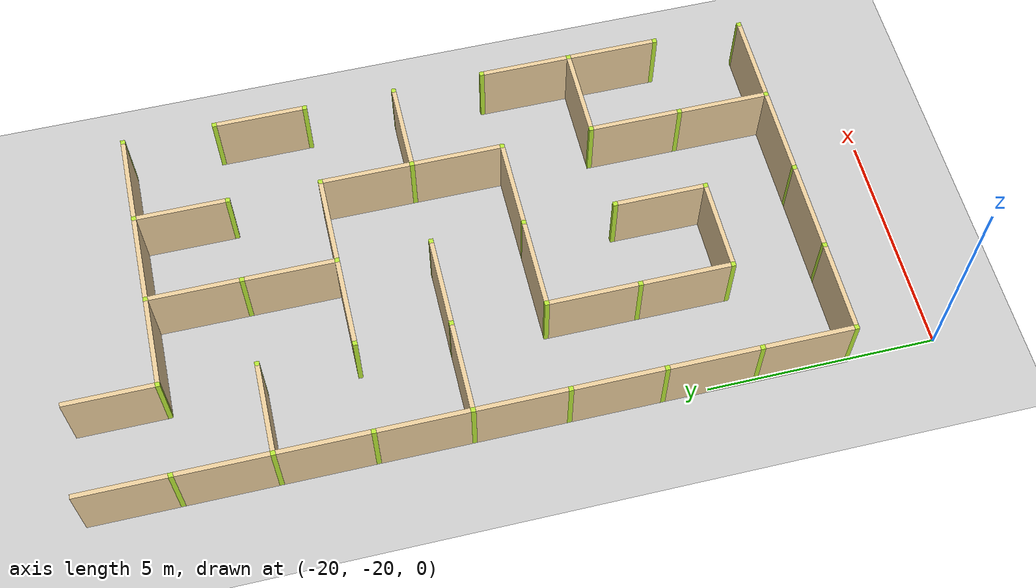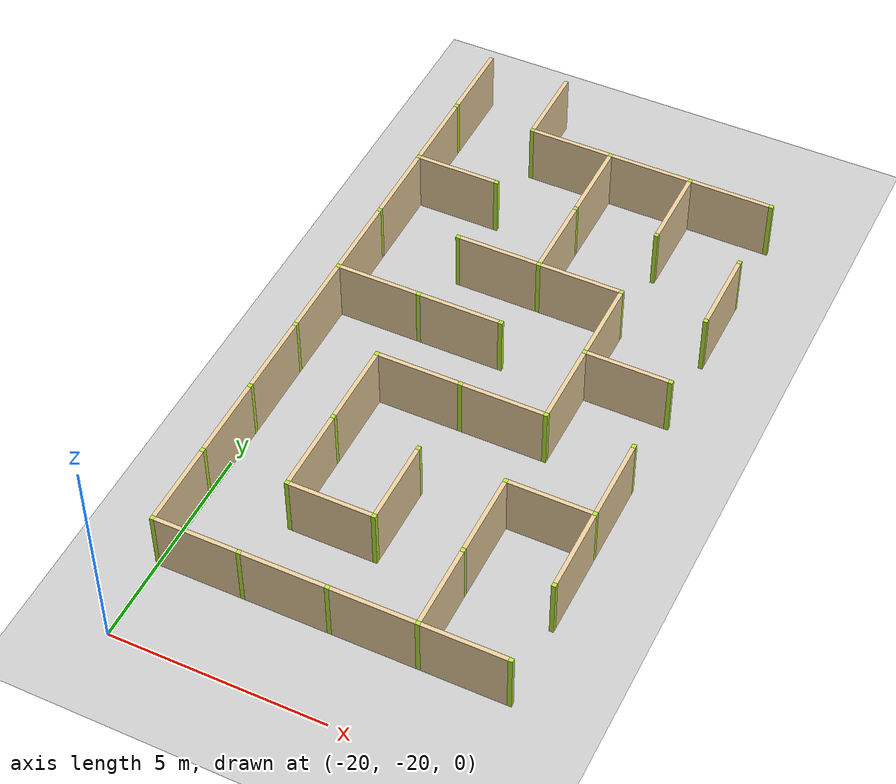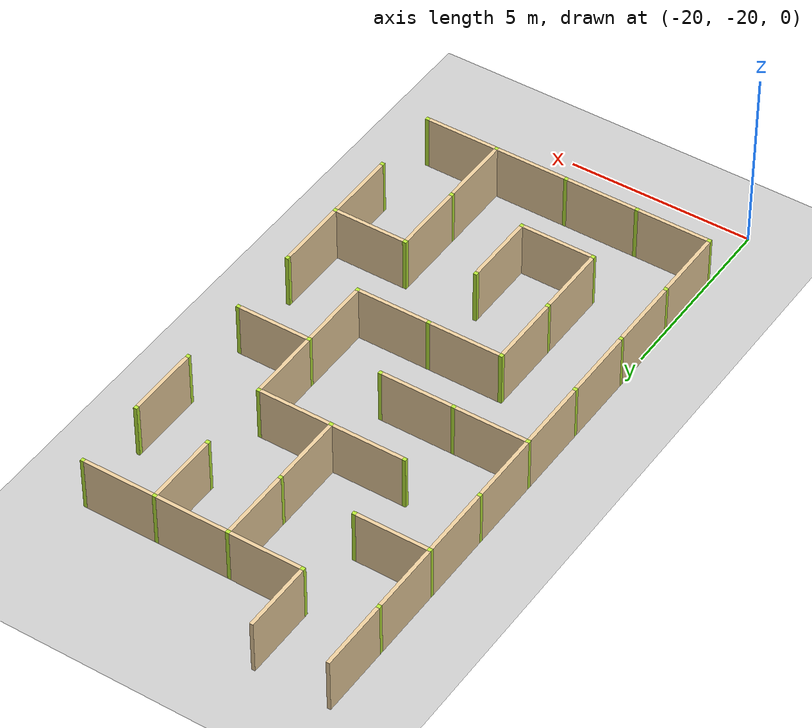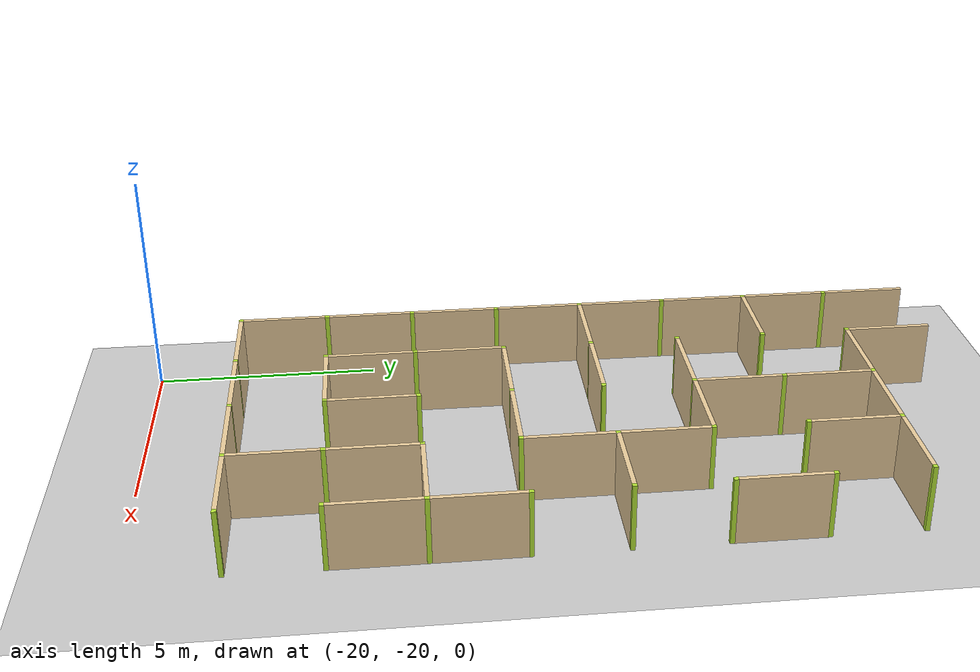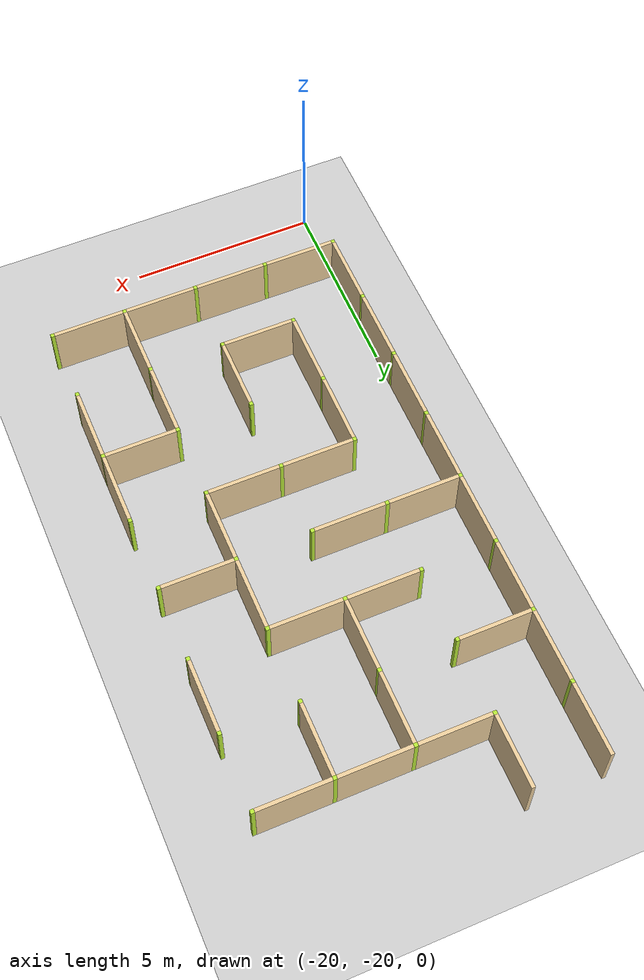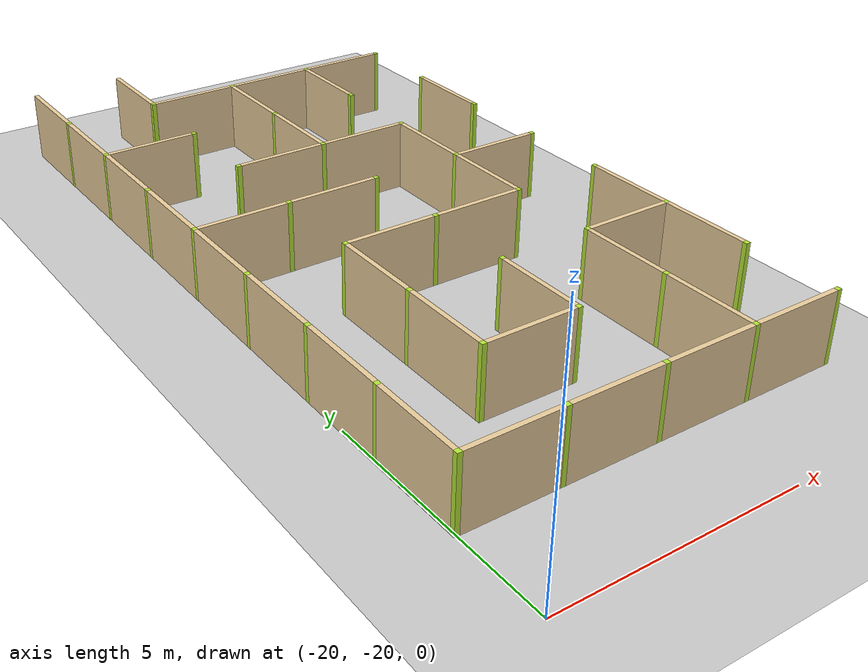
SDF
<sdf version="1.4">
 <world name="maze_world">
  <model name="ground">
   <static>true</static>
   <link name="ground_link">
    <collision name="collision1"><geometry><plane><normal>0 0 1</normal></plane></geometry></collision>
    <visual name="visual1"><geometry><plane><normal>0 0 1</normal><size>100 100</size></plane></geometry></visual>
   </link>
  </model>
  <model name="Untitled">
   <link name="Wall_0_11_v">
    <collision name="Wall_0_Collision">
     <geometry><box><size>1.9 0.1 1.5</size></box></geometry>
     <pose>0 0 0.75 0 -0 0</pose>
    </collision>
    <visual name="Wall_0_Visual">
     <pose>0 0 0.75 0 -0 0</pose>
     <geometry><box><size>1.9 0.1 1.5</size></box></geometry>
     <material>
      <script><uri>file://media/materials/scripts/gazebo.material</uri><name>Gazebo/Grey</name></script>
      <ambient>0.921569 0.807843 0.615686 1</ambient>
     </material>
     <meta><layer>0</layer></meta>
    </visual>
    <pose>-20 -3.0 0 0 -0 1.5708</pose>
   </link>
   <link name="Wall_1_11_v">
    <collision name="Wall_0_Collision">
     <geometry><box><size>1.9 0.1 1.5</size></box></geometry>
     <pose>0 0 0.75 0 -0 0</pose>
    </collision>
    <visual name="Wall_0_Visual">
     <pose>0 0 0.75 0 -0 0</pose>
     <geometry><box><size>1.9 0.1 1.5</size></box></geometry>
     <material>
      <script><uri>file://media/materials/scripts/gazebo.material</uri><name>Gazebo/Grey</name></script>
      <ambient>0.921569 0.807843 0.615686 1</ambient>
     </material>
     <meta><layer>0</layer></meta>
    </visual>
    <pose>-18 -3.0 0 0 -0 1.5708</pose>
   </link>
   <link name="Wall_0_12_v">
    <collision name="Wall_0_Collision">
     <geometry><box><size>1.9 0.1 1.5</size></box></geometry>
     <pose>0 0 0.75 0 -0 0</pose>
    </collision>
    <visual name="Wall_0_Visual">
     <pose>0 0 0.75 0 -0 0</pose>
     <geometry><box><size>1.9 0.1 1.5</size></box></geometry>
     <material>
      <script><uri>file://media/materials/scripts/gazebo.material</uri><name>Gazebo/Grey</name></script>
      <ambient>0.921569 0.807843 0.615686 1</ambient>
     </material>
     <meta><layer>0</layer></meta>
    </visual>
    <pose>-20 -5.0 0 0 -0 1.5708</pose>
   </link>
   <link name="Joint_-20_-4">
    <collision name="Wall_2_Collision">
     <geometry><box><size>0.1 0.1 1.5</size></box></geometry>
     <pose>0 0 0.75 0 -0 0</pose>
    </collision>
    <visual name="Wall_2_Visual">
     <pose>0 0 0.75 0 -0 0</pose>
     <geometry><box><size>0.1 0.1 1.5</size></box></geometry>
     <material>
      <script><uri>file://media/materials/scripts/gazebo.material</uri><name>Gazebo/Grey</name></script>
      <ambient>0.721569 0.907843 0.215686 1</ambient>
     </material>
     <meta><layer>0</layer></meta>
    </visual>
    <pose>-20 -4 0 0 -0 0</pose>
   </link>
   <link name="Wall_1_12_h">
    <collision name="Wall_0_Collision">
     <geometry><box><size>1.9 0.1 1.5</size></box></geometry>
     <pose>0 0 0.75 0 -0 0</pose>
    </collision>
    <visual name="Wall_0_Visual">
     <pose>0 0 0.75 0 -0 0</pose>
     <geometry><box><size>1.9 0.1 1.5</size></box></geometry>
     <material>
      <script><uri>file://media/materials/scripts/gazebo.material</uri><name>Gazebo/Grey</name></script>
      <ambient>0.921569 0.807843 0.615686 1</ambient>
     </material>
     <meta><layer>0</layer></meta>
    </visual>
    <pose>-17.0 -4 0 0 -0 0</pose>
   </link>
   <link name="Joint_-18_-4">
    <collision name="Wall_2_Collision">
     <geometry><box><size>0.1 0.1 1.5</size></box></geometry>
     <pose>0 0 0.75 0 -0 0</pose>
    </collision>
    <visual name="Wall_2_Visual">
     <pose>0 0 0.75 0 -0 0</pose>
     <geometry><box><size>0.1 0.1 1.5</size></box></geometry>
     <material>
      <script><uri>file://media/materials/scripts/gazebo.material</uri><name>Gazebo/Grey</name></script>
      <ambient>0.721569 0.907843 0.215686 1</ambient>
     </material>
     <meta><layer>0</layer></meta>
    </visual>
    <pose>-18 -4 0 0 -0 0</pose>
   </link>
   <link name="Wall_2_12_h">
    <collision name="Wall_0_Collision">
     <geometry><box><size>1.9 0.1 1.5</size></box></geometry>
     <pose>0 0 0.75 0 -0 0</pose>
    </collision>
    <visual name="Wall_0_Visual">
     <pose>0 0 0.75 0 -0 0</pose>
     <geometry><box><size>1.9 0.1 1.5</size></box></geometry>
     <material>
      <script><uri>file://media/materials/scripts/gazebo.material</uri><name>Gazebo/Grey</name></script>
      <ambient>0.921569 0.807843 0.615686 1</ambient>
     </material>
     <meta><layer>0</layer></meta>
    </visual>
    <pose>-15.0 -4 0 0 -0 0</pose>
   </link>
   <link name="Wall_2_12_v">
    <collision name="Wall_0_Collision">
     <geometry><box><size>1.9 0.1 1.5</size></box></geometry>
     <pose>0 0 0.75 0 -0 0</pose>
    </collision>
    <visual name="Wall_0_Visual">
     <pose>0 0 0.75 0 -0 0</pose>
     <geometry><box><size>1.9 0.1 1.5</size></box></geometry>
     <material>
      <script><uri>file://media/materials/scripts/gazebo.material</uri><name>Gazebo/Grey</name></script>
      <ambient>0.921569 0.807843 0.615686 1</ambient>
     </material>
     <meta><layer>0</layer></meta>
    </visual>
    <pose>-16 -5.0 0 0 -0 1.5708</pose>
   </link>
   <link name="Joint_-16_-4">
    <collision name="Wall_2_Collision">
     <geometry><box><size>0.1 0.1 1.5</size></box></geometry>
     <pose>0 0 0.75 0 -0 0</pose>
    </collision>
    <visual name="Wall_2_Visual">
     <pose>0 0 0.75 0 -0 0</pose>
     <geometry><box><size>0.1 0.1 1.5</size></box></geometry>
     <material>
      <script><uri>file://media/materials/scripts/gazebo.material</uri><name>Gazebo/Grey</name></script>
      <ambient>0.721569 0.907843 0.215686 1</ambient>
     </material>
     <meta><layer>0</layer></meta>
    </visual>
    <pose>-16 -4 0 0 -0 0</pose>
   </link>
   <link name="Wall_3_12_h">
    <collision name="Wall_0_Collision">
     <geometry><box><size>1.9 0.1 1.5</size></box></geometry>
     <pose>0 0 0.75 0 -0 0</pose>
    </collision>
    <visual name="Wall_0_Visual">
     <pose>0 0 0.75 0 -0 0</pose>
     <geometry><box><size>1.9 0.1 1.5</size></box></geometry>
     <material>
      <script><uri>file://media/materials/scripts/gazebo.material</uri><name>Gazebo/Grey</name></script>
      <ambient>0.921569 0.807843 0.615686 1</ambient>
     </material>
     <meta><layer>0</layer></meta>
    </visual>
    <pose>-13.0 -4 0 0 -0 0</pose>
   </link>
   <link name="Wall_3_12_v">
    <collision name="Wall_0_Collision">
     <geometry><box><size>1.9 0.1 1.5</size></box></geometry>
     <pose>0 0 0.75 0 -0 0</pose>
    </collision>
    <visual name="Wall_0_Visual">
     <pose>0 0 0.75 0 -0 0</pose>
     <geometry><box><size>1.9 0.1 1.5</size></box></geometry>
     <material>
      <script><uri>file://media/materials/scripts/gazebo.material</uri><name>Gazebo/Grey</name></script>
      <ambient>0.921569 0.807843 0.615686 1</ambient>
     </material>
     <meta><layer>0</layer></meta>
    </visual>
    <pose>-14 -5.0 0 0 -0 1.5708</pose>
   </link>
   <link name="Joint_-14_-4">
    <collision name="Wall_2_Collision">
     <geometry><box><size>0.1 0.1 1.5</size></box></geometry>
     <pose>0 0 0.75 0 -0 0</pose>
    </collision>
    <visual name="Wall_2_Visual">
     <pose>0 0 0.75 0 -0 0</pose>
     <geometry><box><size>0.1 0.1 1.5</size></box></geometry>
     <material>
      <script><uri>file://media/materials/scripts/gazebo.material</uri><name>Gazebo/Grey</name></script>
      <ambient>0.721569 0.907843 0.215686 1</ambient>
     </material>
     <meta><layer>0</layer></meta>
    </visual>
    <pose>-14 -4 0 0 -0 0</pose>
   </link>
   <link name="Joint_-12_-4">
    <collision name="Wall_2_Collision">
     <geometry><box><size>0.1 0.1 1.5</size></box></geometry>
     <pose>0 0 0.75 0 -0 0</pose>
    </collision>
    <visual name="Wall_2_Visual">
     <pose>0 0 0.75 0 -0 0</pose>
     <geometry><box><size>0.1 0.1 1.5</size></box></geometry>
     <material>
      <script><uri>file://media/materials/scripts/gazebo.material</uri><name>Gazebo/Grey</name></script>
      <ambient>0.721569 0.907843 0.215686 1</ambient>
     </material>
     <meta><layer>0</layer></meta>
    </visual>
    <pose>-12 -4 0 0 -0 0</pose>
   </link>
   <link name="Wall_0_13_h">
    <collision name="Wall_0_Collision">
     <geometry><box><size>1.9 0.1 1.5</size></box></geometry>
     <pose>0 0 0.75 0 -0 0</pose>
    </collision>
    <visual name="Wall_0_Visual">
     <pose>0 0 0.75 0 -0 0</pose>
     <geometry><box><size>1.9 0.1 1.5</size></box></geometry>
     <material>
      <script><uri>file://media/materials/scripts/gazebo.material</uri><name>Gazebo/Grey</name></script>
      <ambient>0.921569 0.807843 0.615686 1</ambient>
     </material>
     <meta><layer>0</layer></meta>
    </visual>
    <pose>-19.0 -6 0 0 -0 0</pose>
   </link>
   <link name="Wall_0_13_v">
    <collision name="Wall_0_Collision">
     <geometry><box><size>1.9 0.1 1.5</size></box></geometry>
     <pose>0 0 0.75 0 -0 0</pose>
    </collision>
    <visual name="Wall_0_Visual">
     <pose>0 0 0.75 0 -0 0</pose>
     <geometry><box><size>1.9 0.1 1.5</size></box></geometry>
     <material>
      <script><uri>file://media/materials/scripts/gazebo.material</uri><name>Gazebo/Grey</name></script>
      <ambient>0.921569 0.807843 0.615686 1</ambient>
     </material>
     <meta><layer>0</layer></meta>
    </visual>
    <pose>-20 -7.0 0 0 -0 1.5708</pose>
   </link>
   <link name="Joint_-20_-6">
    <collision name="Wall_2_Collision">
     <geometry><box><size>0.1 0.1 1.5</size></box></geometry>
     <pose>0 0 0.75 0 -0 0</pose>
    </collision>
    <visual name="Wall_2_Visual">
     <pose>0 0 0.75 0 -0 0</pose>
     <geometry><box><size>0.1 0.1 1.5</size></box></geometry>
     <material>
      <script><uri>file://media/materials/scripts/gazebo.material</uri><name>Gazebo/Grey</name></script>
      <ambient>0.721569 0.907843 0.215686 1</ambient>
     </material>
     <meta><layer>0</layer></meta>
    </visual>
    <pose>-20 -6 0 0 -0 0</pose>
   </link>
   <link name="Joint_-18_-6">
    <collision name="Wall_2_Collision">
     <geometry><box><size>0.1 0.1 1.5</size></box></geometry>
     <pose>0 0 0.75 0 -0 0</pose>
    </collision>
    <visual name="Wall_2_Visual">
     <pose>0 0 0.75 0 -0 0</pose>
     <geometry><box><size>0.1 0.1 1.5</size></box></geometry>
     <material>
      <script><uri>file://media/materials/scripts/gazebo.material</uri><name>Gazebo/Grey</name></script>
      <ambient>0.721569 0.907843 0.215686 1</ambient>
     </material>
     <meta><layer>0</layer></meta>
    </visual>
    <pose>-18 -6 0 0 -0 0</pose>
   </link>
   <link name="Wall_2_13_v">
    <collision name="Wall_0_Collision">
     <geometry><box><size>1.9 0.1 1.5</size></box></geometry>
     <pose>0 0 0.75 0 -0 0</pose>
    </collision>
    <visual name="Wall_0_Visual">
     <pose>0 0 0.75 0 -0 0</pose>
     <geometry><box><size>1.9 0.1 1.5</size></box></geometry>
     <material>
      <script><uri>file://media/materials/scripts/gazebo.material</uri><name>Gazebo/Grey</name></script>
      <ambient>0.921569 0.807843 0.615686 1</ambient>
     </material>
     <meta><layer>0</layer></meta>
    </visual>
    <pose>-16 -7.0 0 0 -0 1.5708</pose>
   </link>
   <link name="Joint_-16_-6">
    <collision name="Wall_2_Collision">
     <geometry><box><size>0.1 0.1 1.5</size></box></geometry>
     <pose>0 0 0.75 0 -0 0</pose>
    </collision>
    <visual name="Wall_2_Visual">
     <pose>0 0 0.75 0 -0 0</pose>
     <geometry><box><size>0.1 0.1 1.5</size></box></geometry>
     <material>
      <script><uri>file://media/materials/scripts/gazebo.material</uri><name>Gazebo/Grey</name></script>
      <ambient>0.721569 0.907843 0.215686 1</ambient>
     </material>
     <meta><layer>0</layer></meta>
    </visual>
    <pose>-16 -6 0 0 -0 0</pose>
   </link>
   <link name="Joint_-14_-6">
    <collision name="Wall_2_Collision">
     <geometry><box><size>0.1 0.1 1.5</size></box></geometry>
     <pose>0 0 0.75 0 -0 0</pose>
    </collision>
    <visual name="Wall_2_Visual">
     <pose>0 0 0.75 0 -0 0</pose>
     <geometry><box><size>0.1 0.1 1.5</size></box></geometry>
     <material>
      <script><uri>file://media/materials/scripts/gazebo.material</uri><name>Gazebo/Grey</name></script>
      <ambient>0.721569 0.907843 0.215686 1</ambient>
     </material>
     <meta><layer>0</layer></meta>
    </visual>
    <pose>-14 -6 0 0 -0 0</pose>
   </link>
   <link name="Wall_4_13_v">
    <collision name="Wall_0_Collision">
     <geometry><box><size>1.9 0.1 1.5</size></box></geometry>
     <pose>0 0 0.75 0 -0 0</pose>
    </collision>
    <visual name="Wall_0_Visual">
     <pose>0 0 0.75 0 -0 0</pose>
     <geometry><box><size>1.9 0.1 1.5</size></box></geometry>
     <material>
      <script><uri>file://media/materials/scripts/gazebo.material</uri><name>Gazebo/Grey</name></script>
      <ambient>0.921569 0.807843 0.615686 1</ambient>
     </material>
     <meta><layer>0</layer></meta>
    </visual>
    <pose>-12 -7.0 0 0 -0 1.5708</pose>
   </link>
   <link name="Joint_-12_-6">
    <collision name="Wall_2_Collision">
     <geometry><box><size>0.1 0.1 1.5</size></box></geometry>
     <pose>0 0 0.75 0 -0 0</pose>
    </collision>
    <visual name="Wall_2_Visual">
     <pose>0 0 0.75 0 -0 0</pose>
     <geometry><box><size>0.1 0.1 1.5</size></box></geometry>
     <material>
      <script><uri>file://media/materials/scripts/gazebo.material</uri><name>Gazebo/Grey</name></script>
      <ambient>0.721569 0.907843 0.215686 1</ambient>
     </material>
     <meta><layer>0</layer></meta>
    </visual>
    <pose>-12 -6 0 0 -0 0</pose>
   </link>
   <link name="Wall_0_14_v">
    <collision name="Wall_0_Collision">
     <geometry><box><size>1.9 0.1 1.5</size></box></geometry>
     <pose>0 0 0.75 0 -0 0</pose>
    </collision>
    <visual name="Wall_0_Visual">
     <pose>0 0 0.75 0 -0 0</pose>
     <geometry><box><size>1.9 0.1 1.5</size></box></geometry>
     <material>
      <script><uri>file://media/materials/scripts/gazebo.material</uri><name>Gazebo/Grey</name></script>
      <ambient>0.921569 0.807843 0.615686 1</ambient>
     </material>
     <meta><layer>0</layer></meta>
    </visual>
    <pose>-20 -9.0 0 0 -0 1.5708</pose>
   </link>
   <link name="Joint_-20_-8">
    <collision name="Wall_2_Collision">
     <geometry><box><size>0.1 0.1 1.5</size></box></geometry>
     <pose>0 0 0.75 0 -0 0</pose>
    </collision>
    <visual name="Wall_2_Visual">
     <pose>0 0 0.75 0 -0 0</pose>
     <geometry><box><size>0.1 0.1 1.5</size></box></geometry>
     <material>
      <script><uri>file://media/materials/scripts/gazebo.material</uri><name>Gazebo/Grey</name></script>
      <ambient>0.721569 0.907843 0.215686 1</ambient>
     </material>
     <meta><layer>0</layer></meta>
    </visual>
    <pose>-20 -8 0 0 -0 0</pose>
   </link>
   <link name="Wall_1_14_h">
    <collision name="Wall_0_Collision">
     <geometry><box><size>1.9 0.1 1.5</size></box></geometry>
     <pose>0 0 0.75 0 -0 0</pose>
    </collision>
    <visual name="Wall_0_Visual">
     <pose>0 0 0.75 0 -0 0</pose>
     <geometry><box><size>1.9 0.1 1.5</size></box></geometry>
     <material>
      <script><uri>file://media/materials/scripts/gazebo.material</uri><name>Gazebo/Grey</name></script>
      <ambient>0.921569 0.807843 0.615686 1</ambient>
     </material>
     <meta><layer>0</layer></meta>
    </visual>
    <pose>-17.0 -8 0 0 -0 0</pose>
   </link>
   <link name="Joint_-18_-8">
    <collision name="Wall_2_Collision">
     <geometry><box><size>0.1 0.1 1.5</size></box></geometry>
     <pose>0 0 0.75 0 -0 0</pose>
    </collision>
    <visual name="Wall_2_Visual">
     <pose>0 0 0.75 0 -0 0</pose>
     <geometry><box><size>0.1 0.1 1.5</size></box></geometry>
     <material>
      <script><uri>file://media/materials/scripts/gazebo.material</uri><name>Gazebo/Grey</name></script>
      <ambient>0.721569 0.907843 0.215686 1</ambient>
     </material>
     <meta><layer>0</layer></meta>
    </visual>
    <pose>-18 -8 0 0 -0 0</pose>
   </link>
   <link name="Wall_2_14_h">
    <collision name="Wall_0_Collision">
     <geometry><box><size>1.9 0.1 1.5</size></box></geometry>
     <pose>0 0 0.75 0 -0 0</pose>
    </collision>
    <visual name="Wall_0_Visual">
     <pose>0 0 0.75 0 -0 0</pose>
     <geometry><box><size>1.9 0.1 1.5</size></box></geometry>
     <material>
      <script><uri>file://media/materials/scripts/gazebo.material</uri><name>Gazebo/Grey</name></script>
      <ambient>0.921569 0.807843 0.615686 1</ambient>
     </material>
     <meta><layer>0</layer></meta>
    </visual>
    <pose>-15.0 -8 0 0 -0 0</pose>
   </link>
   <link name="Joint_-16_-8">
    <collision name="Wall_2_Collision">
     <geometry><box><size>0.1 0.1 1.5</size></box></geometry>
     <pose>0 0 0.75 0 -0 0</pose>
    </collision>
    <visual name="Wall_2_Visual">
     <pose>0 0 0.75 0 -0 0</pose>
     <geometry><box><size>0.1 0.1 1.5</size></box></geometry>
     <material>
      <script><uri>file://media/materials/scripts/gazebo.material</uri><name>Gazebo/Grey</name></script>
      <ambient>0.721569 0.907843 0.215686 1</ambient>
     </material>
     <meta><layer>0</layer></meta>
    </visual>
    <pose>-16 -8 0 0 -0 0</pose>
   </link>
   <link name="Wall_3_14_v">
    <collision name="Wall_0_Collision">
     <geometry><box><size>1.9 0.1 1.5</size></box></geometry>
     <pose>0 0 0.75 0 -0 0</pose>
    </collision>
    <visual name="Wall_0_Visual">
     <pose>0 0 0.75 0 -0 0</pose>
     <geometry><box><size>1.9 0.1 1.5</size></box></geometry>
     <material>
      <script><uri>file://media/materials/scripts/gazebo.material</uri><name>Gazebo/Grey</name></script>
      <ambient>0.921569 0.807843 0.615686 1</ambient>
     </material>
     <meta><layer>0</layer></meta>
    </visual>
    <pose>-14 -9.0 0 0 -0 1.5708</pose>
   </link>
   <link name="Joint_-14_-8">
    <collision name="Wall_2_Collision">
     <geometry><box><size>0.1 0.1 1.5</size></box></geometry>
     <pose>0 0 0.75 0 -0 0</pose>
    </collision>
    <visual name="Wall_2_Visual">
     <pose>0 0 0.75 0 -0 0</pose>
     <geometry><box><size>0.1 0.1 1.5</size></box></geometry>
     <material>
      <script><uri>file://media/materials/scripts/gazebo.material</uri><name>Gazebo/Grey</name></script>
      <ambient>0.721569 0.907843 0.215686 1</ambient>
     </material>
     <meta><layer>0</layer></meta>
    </visual>
    <pose>-14 -8 0 0 -0 0</pose>
   </link>
   <link name="Joint_-12_-8">
    <collision name="Wall_2_Collision">
     <geometry><box><size>0.1 0.1 1.5</size></box></geometry>
     <pose>0 0 0.75 0 -0 0</pose>
    </collision>
    <visual name="Wall_2_Visual">
     <pose>0 0 0.75 0 -0 0</pose>
     <geometry><box><size>0.1 0.1 1.5</size></box></geometry>
     <material>
      <script><uri>file://media/materials/scripts/gazebo.material</uri><name>Gazebo/Grey</name></script>
      <ambient>0.721569 0.907843 0.215686 1</ambient>
     </material>
     <meta><layer>0</layer></meta>
    </visual>
    <pose>-12 -8 0 0 -0 0</pose>
   </link>
   <link name="Wall_0_15_h">
    <collision name="Wall_0_Collision">
     <geometry><box><size>1.9 0.1 1.5</size></box></geometry>
     <pose>0 0 0.75 0 -0 0</pose>
    </collision>
    <visual name="Wall_0_Visual">
     <pose>0 0 0.75 0 -0 0</pose>
     <geometry><box><size>1.9 0.1 1.5</size></box></geometry>
     <material>
      <script><uri>file://media/materials/scripts/gazebo.material</uri><name>Gazebo/Grey</name></script>
      <ambient>0.921569 0.807843 0.615686 1</ambient>
     </material>
     <meta><layer>0</layer></meta>
    </visual>
    <pose>-19.0 -10 0 0 -0 0</pose>
   </link>
   <link name="Wall_0_15_v">
    <collision name="Wall_0_Collision">
     <geometry><box><size>1.9 0.1 1.5</size></box></geometry>
     <pose>0 0 0.75 0 -0 0</pose>
    </collision>
    <visual name="Wall_0_Visual">
     <pose>0 0 0.75 0 -0 0</pose>
     <geometry><box><size>1.9 0.1 1.5</size></box></geometry>
     <material>
      <script><uri>file://media/materials/scripts/gazebo.material</uri><name>Gazebo/Grey</name></script>
      <ambient>0.921569 0.807843 0.615686 1</ambient>
     </material>
     <meta><layer>0</layer></meta>
    </visual>
    <pose>-20 -11.0 0 0 -0 1.5708</pose>
   </link>
   <link name="Joint_-20_-10">
    <collision name="Wall_2_Collision">
     <geometry><box><size>0.1 0.1 1.5</size></box></geometry>
     <pose>0 0 0.75 0 -0 0</pose>
    </collision>
    <visual name="Wall_2_Visual">
     <pose>0 0 0.75 0 -0 0</pose>
     <geometry><box><size>0.1 0.1 1.5</size></box></geometry>
     <material>
      <script><uri>file://media/materials/scripts/gazebo.material</uri><name>Gazebo/Grey</name></script>
      <ambient>0.721569 0.907843 0.215686 1</ambient>
     </material>
     <meta><layer>0</layer></meta>
    </visual>
    <pose>-20 -10 0 0 -0 0</pose>
   </link>
   <link name="Wall_1_15_h">
    <collision name="Wall_0_Collision">
     <geometry><box><size>1.9 0.1 1.5</size></box></geometry>
     <pose>0 0 0.75 0 -0 0</pose>
    </collision>
    <visual name="Wall_0_Visual">
     <pose>0 0 0.75 0 -0 0</pose>
     <geometry><box><size>1.9 0.1 1.5</size></box></geometry>
     <material>
      <script><uri>file://media/materials/scripts/gazebo.material</uri><name>Gazebo/Grey</name></script>
      <ambient>0.921569 0.807843 0.615686 1</ambient>
     </material>
     <meta><layer>0</layer></meta>
    </visual>
    <pose>-17.0 -10 0 0 -0 0</pose>
   </link>
   <link name="Joint_-18_-10">
    <collision name="Wall_2_Collision">
     <geometry><box><size>0.1 0.1 1.5</size></box></geometry>
     <pose>0 0 0.75 0 -0 0</pose>
    </collision>
    <visual name="Wall_2_Visual">
     <pose>0 0 0.75 0 -0 0</pose>
     <geometry><box><size>0.1 0.1 1.5</size></box></geometry>
     <material>
      <script><uri>file://media/materials/scripts/gazebo.material</uri><name>Gazebo/Grey</name></script>
      <ambient>0.721569 0.907843 0.215686 1</ambient>
     </material>
     <meta><layer>0</layer></meta>
    </visual>
    <pose>-18 -10 0 0 -0 0</pose>
   </link>
   <link name="Joint_-16_-10">
    <collision name="Wall_2_Collision">
     <geometry><box><size>0.1 0.1 1.5</size></box></geometry>
     <pose>0 0 0.75 0 -0 0</pose>
    </collision>
    <visual name="Wall_2_Visual">
     <pose>0 0 0.75 0 -0 0</pose>
     <geometry><box><size>0.1 0.1 1.5</size></box></geometry>
     <material>
      <script><uri>file://media/materials/scripts/gazebo.material</uri><name>Gazebo/Grey</name></script>
      <ambient>0.721569 0.907843 0.215686 1</ambient>
     </material>
     <meta><layer>0</layer></meta>
    </visual>
    <pose>-16 -10 0 0 -0 0</pose>
   </link>
   <link name="Wall_3_15_h">
    <collision name="Wall_0_Collision">
     <geometry><box><size>1.9 0.1 1.5</size></box></geometry>
     <pose>0 0 0.75 0 -0 0</pose>
    </collision>
    <visual name="Wall_0_Visual">
     <pose>0 0 0.75 0 -0 0</pose>
     <geometry><box><size>1.9 0.1 1.5</size></box></geometry>
     <material>
      <script><uri>file://media/materials/scripts/gazebo.material</uri><name>Gazebo/Grey</name></script>
      <ambient>0.921569 0.807843 0.615686 1</ambient>
     </material>
     <meta><layer>0</layer></meta>
    </visual>
    <pose>-13.0 -10 0 0 -0 0</pose>
   </link>
   <link name="Wall_3_15_v">
    <collision name="Wall_0_Collision">
     <geometry><box><size>1.9 0.1 1.5</size></box></geometry>
     <pose>0 0 0.75 0 -0 0</pose>
    </collision>
    <visual name="Wall_0_Visual">
     <pose>0 0 0.75 0 -0 0</pose>
     <geometry><box><size>1.9 0.1 1.5</size></box></geometry>
     <material>
      <script><uri>file://media/materials/scripts/gazebo.material</uri><name>Gazebo/Grey</name></script>
      <ambient>0.921569 0.807843 0.615686 1</ambient>
     </material>
     <meta><layer>0</layer></meta>
    </visual>
    <pose>-14 -11.0 0 0 -0 1.5708</pose>
   </link>
   <link name="Joint_-14_-10">
    <collision name="Wall_2_Collision">
     <geometry><box><size>0.1 0.1 1.5</size></box></geometry>
     <pose>0 0 0.75 0 -0 0</pose>
    </collision>
    <visual name="Wall_2_Visual">
     <pose>0 0 0.75 0 -0 0</pose>
     <geometry><box><size>0.1 0.1 1.5</size></box></geometry>
     <material>
      <script><uri>file://media/materials/scripts/gazebo.material</uri><name>Gazebo/Grey</name></script>
      <ambient>0.721569 0.907843 0.215686 1</ambient>
     </material>
     <meta><layer>0</layer></meta>
    </visual>
    <pose>-14 -10 0 0 -0 0</pose>
   </link>
   <link name="Joint_-12_-10">
    <collision name="Wall_2_Collision">
     <geometry><box><size>0.1 0.1 1.5</size></box></geometry>
     <pose>0 0 0.75 0 -0 0</pose>
    </collision>
    <visual name="Wall_2_Visual">
     <pose>0 0 0.75 0 -0 0</pose>
     <geometry><box><size>0.1 0.1 1.5</size></box></geometry>
     <material>
      <script><uri>file://media/materials/scripts/gazebo.material</uri><name>Gazebo/Grey</name></script>
      <ambient>0.721569 0.907843 0.215686 1</ambient>
     </material>
     <meta><layer>0</layer></meta>
    </visual>
    <pose>-12 -10 0 0 -0 0</pose>
   </link>
   <link name="Wall_0_16_v">
    <collision name="Wall_0_Collision">
     <geometry><box><size>1.9 0.1 1.5</size></box></geometry>
     <pose>0 0 0.75 0 -0 0</pose>
    </collision>
    <visual name="Wall_0_Visual">
     <pose>0 0 0.75 0 -0 0</pose>
     <geometry><box><size>1.9 0.1 1.5</size></box></geometry>
     <material>
      <script><uri>file://media/materials/scripts/gazebo.material</uri><name>Gazebo/Grey</name></script>
      <ambient>0.921569 0.807843 0.615686 1</ambient>
     </material>
     <meta><layer>0</layer></meta>
    </visual>
    <pose>-20 -13.0 0 0 -0 1.5708</pose>
   </link>
   <link name="Joint_-20_-12">
    <collision name="Wall_2_Collision">
     <geometry><box><size>0.1 0.1 1.5</size></box></geometry>
     <pose>0 0 0.75 0 -0 0</pose>
    </collision>
    <visual name="Wall_2_Visual">
     <pose>0 0 0.75 0 -0 0</pose>
     <geometry><box><size>0.1 0.1 1.5</size></box></geometry>
     <material>
      <script><uri>file://media/materials/scripts/gazebo.material</uri><name>Gazebo/Grey</name></script>
      <ambient>0.721569 0.907843 0.215686 1</ambient>
     </material>
     <meta><layer>0</layer></meta>
    </visual>
    <pose>-20 -12 0 0 -0 0</pose>
   </link>
   <link name="Wall_1_16_h">
    <collision name="Wall_0_Collision">
     <geometry><box><size>1.9 0.1 1.5</size></box></geometry>
     <pose>0 0 0.75 0 -0 0</pose>
    </collision>
    <visual name="Wall_0_Visual">
     <pose>0 0 0.75 0 -0 0</pose>
     <geometry><box><size>1.9 0.1 1.5</size></box></geometry>
     <material>
      <script><uri>file://media/materials/scripts/gazebo.material</uri><name>Gazebo/Grey</name></script>
      <ambient>0.921569 0.807843 0.615686 1</ambient>
     </material>
     <meta><layer>0</layer></meta>
    </visual>
    <pose>-17.0 -12 0 0 -0 0</pose>
   </link>
   <link name="Wall_1_16_v">
    <collision name="Wall_0_Collision">
     <geometry><box><size>1.9 0.1 1.5</size></box></geometry>
     <pose>0 0 0.75 0 -0 0</pose>
    </collision>
    <visual name="Wall_0_Visual">
     <pose>0 0 0.75 0 -0 0</pose>
     <geometry><box><size>1.9 0.1 1.5</size></box></geometry>
     <material>
      <script><uri>file://media/materials/scripts/gazebo.material</uri><name>Gazebo/Grey</name></script>
      <ambient>0.921569 0.807843 0.615686 1</ambient>
     </material>
     <meta><layer>0</layer></meta>
    </visual>
    <pose>-18 -13.0 0 0 -0 1.5708</pose>
   </link>
   <link name="Joint_-18_-12">
    <collision name="Wall_2_Collision">
     <geometry><box><size>0.1 0.1 1.5</size></box></geometry>
     <pose>0 0 0.75 0 -0 0</pose>
    </collision>
    <visual name="Wall_2_Visual">
     <pose>0 0 0.75 0 -0 0</pose>
     <geometry><box><size>0.1 0.1 1.5</size></box></geometry>
     <material>
      <script><uri>file://media/materials/scripts/gazebo.material</uri><name>Gazebo/Grey</name></script>
      <ambient>0.721569 0.907843 0.215686 1</ambient>
     </material>
     <meta><layer>0</layer></meta>
    </visual>
    <pose>-18 -12 0 0 -0 0</pose>
   </link>
   <link name="Wall_2_16_h">
    <collision name="Wall_0_Collision">
     <geometry><box><size>1.9 0.1 1.5</size></box></geometry>
     <pose>0 0 0.75 0 -0 0</pose>
    </collision>
    <visual name="Wall_0_Visual">
     <pose>0 0 0.75 0 -0 0</pose>
     <geometry><box><size>1.9 0.1 1.5</size></box></geometry>
     <material>
      <script><uri>file://media/materials/scripts/gazebo.material</uri><name>Gazebo/Grey</name></script>
      <ambient>0.921569 0.807843 0.615686 1</ambient>
     </material>
     <meta><layer>0</layer></meta>
    </visual>
    <pose>-15.0 -12 0 0 -0 0</pose>
   </link>
   <link name="Joint_-16_-12">
    <collision name="Wall_2_Collision">
     <geometry><box><size>0.1 0.1 1.5</size></box></geometry>
     <pose>0 0 0.75 0 -0 0</pose>
    </collision>
    <visual name="Wall_2_Visual">
     <pose>0 0 0.75 0 -0 0</pose>
     <geometry><box><size>0.1 0.1 1.5</size></box></geometry>
     <material>
      <script><uri>file://media/materials/scripts/gazebo.material</uri><name>Gazebo/Grey</name></script>
      <ambient>0.721569 0.907843 0.215686 1</ambient>
     </material>
     <meta><layer>0</layer></meta>
    </visual>
    <pose>-16 -12 0 0 -0 0</pose>
   </link>
   <link name="Joint_-14_-12">
    <collision name="Wall_2_Collision">
     <geometry><box><size>0.1 0.1 1.5</size></box></geometry>
     <pose>0 0 0.75 0 -0 0</pose>
    </collision>
    <visual name="Wall_2_Visual">
     <pose>0 0 0.75 0 -0 0</pose>
     <geometry><box><size>0.1 0.1 1.5</size></box></geometry>
     <material>
      <script><uri>file://media/materials/scripts/gazebo.material</uri><name>Gazebo/Grey</name></script>
      <ambient>0.721569 0.907843 0.215686 1</ambient>
     </material>
     <meta><layer>0</layer></meta>
    </visual>
    <pose>-14 -12 0 0 -0 0</pose>
   </link>
   <link name="Wall_4_16_v">
    <collision name="Wall_0_Collision">
     <geometry><box><size>1.9 0.1 1.5</size></box></geometry>
     <pose>0 0 0.75 0 -0 0</pose>
    </collision>
    <visual name="Wall_0_Visual">
     <pose>0 0 0.75 0 -0 0</pose>
     <geometry><box><size>1.9 0.1 1.5</size></box></geometry>
     <material>
      <script><uri>file://media/materials/scripts/gazebo.material</uri><name>Gazebo/Grey</name></script>
      <ambient>0.921569 0.807843 0.615686 1</ambient>
     </material>
     <meta><layer>0</layer></meta>
    </visual>
    <pose>-12 -13.0 0 0 -0 1.5708</pose>
   </link>
   <link name="Joint_-12_-12">
    <collision name="Wall_2_Collision">
     <geometry><box><size>0.1 0.1 1.5</size></box></geometry>
     <pose>0 0 0.75 0 -0 0</pose>
    </collision>
    <visual name="Wall_2_Visual">
     <pose>0 0 0.75 0 -0 0</pose>
     <geometry><box><size>0.1 0.1 1.5</size></box></geometry>
     <material>
      <script><uri>file://media/materials/scripts/gazebo.material</uri><name>Gazebo/Grey</name></script>
      <ambient>0.721569 0.907843 0.215686 1</ambient>
     </material>
     <meta><layer>0</layer></meta>
    </visual>
    <pose>-12 -12 0 0 -0 0</pose>
   </link>
   <link name="Wall_0_17_v">
    <collision name="Wall_0_Collision">
     <geometry><box><size>1.9 0.1 1.5</size></box></geometry>
     <pose>0 0 0.75 0 -0 0</pose>
    </collision>
    <visual name="Wall_0_Visual">
     <pose>0 0 0.75 0 -0 0</pose>
     <geometry><box><size>1.9 0.1 1.5</size></box></geometry>
     <material>
      <script><uri>file://media/materials/scripts/gazebo.material</uri><name>Gazebo/Grey</name></script>
      <ambient>0.921569 0.807843 0.615686 1</ambient>
     </material>
     <meta><layer>0</layer></meta>
    </visual>
    <pose>-20 -15.0 0 0 -0 1.5708</pose>
   </link>
   <link name="Joint_-20_-14">
    <collision name="Wall_2_Collision">
     <geometry><box><size>0.1 0.1 1.5</size></box></geometry>
     <pose>0 0 0.75 0 -0 0</pose>
    </collision>
    <visual name="Wall_2_Visual">
     <pose>0 0 0.75 0 -0 0</pose>
     <geometry><box><size>0.1 0.1 1.5</size></box></geometry>
     <material>
      <script><uri>file://media/materials/scripts/gazebo.material</uri><name>Gazebo/Grey</name></script>
      <ambient>0.721569 0.907843 0.215686 1</ambient>
     </material>
     <meta><layer>0</layer></meta>
    </visual>
    <pose>-20 -14 0 0 -0 0</pose>
   </link>
   <link name="Wall_1_17_v">
    <collision name="Wall_0_Collision">
     <geometry><box><size>1.9 0.1 1.5</size></box></geometry>
     <pose>0 0 0.75 0 -0 0</pose>
    </collision>
    <visual name="Wall_0_Visual">
     <pose>0 0 0.75 0 -0 0</pose>
     <geometry><box><size>1.9 0.1 1.5</size></box></geometry>
     <material>
      <script><uri>file://media/materials/scripts/gazebo.material</uri><name>Gazebo/Grey</name></script>
      <ambient>0.921569 0.807843 0.615686 1</ambient>
     </material>
     <meta><layer>0</layer></meta>
    </visual>
    <pose>-18 -15.0 0 0 -0 1.5708</pose>
   </link>
   <link name="Joint_-18_-14">
    <collision name="Wall_2_Collision">
     <geometry><box><size>0.1 0.1 1.5</size></box></geometry>
     <pose>0 0 0.75 0 -0 0</pose>
    </collision>
    <visual name="Wall_2_Visual">
     <pose>0 0 0.75 0 -0 0</pose>
     <geometry><box><size>0.1 0.1 1.5</size></box></geometry>
     <material>
      <script><uri>file://media/materials/scripts/gazebo.material</uri><name>Gazebo/Grey</name></script>
      <ambient>0.721569 0.907843 0.215686 1</ambient>
     </material>
     <meta><layer>0</layer></meta>
    </visual>
    <pose>-18 -14 0 0 -0 0</pose>
   </link>
   <link name="Wall_2_17_v">
    <collision name="Wall_0_Collision">
     <geometry><box><size>1.9 0.1 1.5</size></box></geometry>
     <pose>0 0 0.75 0 -0 0</pose>
    </collision>
    <visual name="Wall_0_Visual">
     <pose>0 0 0.75 0 -0 0</pose>
     <geometry><box><size>1.9 0.1 1.5</size></box></geometry>
     <material>
      <script><uri>file://media/materials/scripts/gazebo.material</uri><name>Gazebo/Grey</name></script>
      <ambient>0.921569 0.807843 0.615686 1</ambient>
     </material>
     <meta><layer>0</layer></meta>
    </visual>
    <pose>-16 -15.0 0 0 -0 1.5708</pose>
   </link>
   <link name="Joint_-16_-14">
    <collision name="Wall_2_Collision">
     <geometry><box><size>0.1 0.1 1.5</size></box></geometry>
     <pose>0 0 0.75 0 -0 0</pose>
    </collision>
    <visual name="Wall_2_Visual">
     <pose>0 0 0.75 0 -0 0</pose>
     <geometry><box><size>0.1 0.1 1.5</size></box></geometry>
     <material>
      <script><uri>file://media/materials/scripts/gazebo.material</uri><name>Gazebo/Grey</name></script>
      <ambient>0.721569 0.907843 0.215686 1</ambient>
     </material>
     <meta><layer>0</layer></meta>
    </visual>
    <pose>-16 -14 0 0 -0 0</pose>
   </link>
   <link name="Wall_3_17_h">
    <collision name="Wall_0_Collision">
     <geometry><box><size>1.9 0.1 1.5</size></box></geometry>
     <pose>0 0 0.75 0 -0 0</pose>
    </collision>
    <visual name="Wall_0_Visual">
     <pose>0 0 0.75 0 -0 0</pose>
     <geometry><box><size>1.9 0.1 1.5</size></box></geometry>
     <material>
      <script><uri>file://media/materials/scripts/gazebo.material</uri><name>Gazebo/Grey</name></script>
      <ambient>0.921569 0.807843 0.615686 1</ambient>
     </material>
     <meta><layer>0</layer></meta>
    </visual>
    <pose>-13.0 -14 0 0 -0 0</pose>
   </link>
   <link name="Wall_3_17_v">
    <collision name="Wall_0_Collision">
     <geometry><box><size>1.9 0.1 1.5</size></box></geometry>
     <pose>0 0 0.75 0 -0 0</pose>
    </collision>
    <visual name="Wall_0_Visual">
     <pose>0 0 0.75 0 -0 0</pose>
     <geometry><box><size>1.9 0.1 1.5</size></box></geometry>
     <material>
      <script><uri>file://media/materials/scripts/gazebo.material</uri><name>Gazebo/Grey</name></script>
      <ambient>0.921569 0.807843 0.615686 1</ambient>
     </material>
     <meta><layer>0</layer></meta>
    </visual>
    <pose>-14 -15.0 0 0 -0 1.5708</pose>
   </link>
   <link name="Joint_-14_-14">
    <collision name="Wall_2_Collision">
     <geometry><box><size>0.1 0.1 1.5</size></box></geometry>
     <pose>0 0 0.75 0 -0 0</pose>
    </collision>
    <visual name="Wall_2_Visual">
     <pose>0 0 0.75 0 -0 0</pose>
     <geometry><box><size>0.1 0.1 1.5</size></box></geometry>
     <material>
      <script><uri>file://media/materials/scripts/gazebo.material</uri><name>Gazebo/Grey</name></script>
      <ambient>0.721569 0.907843 0.215686 1</ambient>
     </material>
     <meta><layer>0</layer></meta>
    </visual>
    <pose>-14 -14 0 0 -0 0</pose>
   </link>
   <link name="Wall_4_17_v">
    <collision name="Wall_0_Collision">
     <geometry><box><size>1.9 0.1 1.5</size></box></geometry>
     <pose>0 0 0.75 0 -0 0</pose>
    </collision>
    <visual name="Wall_0_Visual">
     <pose>0 0 0.75 0 -0 0</pose>
     <geometry><box><size>1.9 0.1 1.5</size></box></geometry>
     <material>
      <script><uri>file://media/materials/scripts/gazebo.material</uri><name>Gazebo/Grey</name></script>
      <ambient>0.921569 0.807843 0.615686 1</ambient>
     </material>
     <meta><layer>0</layer></meta>
    </visual>
    <pose>-12 -15.0 0 0 -0 1.5708</pose>
   </link>
   <link name="Joint_-12_-14">
    <collision name="Wall_2_Collision">
     <geometry><box><size>0.1 0.1 1.5</size></box></geometry>
     <pose>0 0 0.75 0 -0 0</pose>
    </collision>
    <visual name="Wall_2_Visual">
     <pose>0 0 0.75 0 -0 0</pose>
     <geometry><box><size>0.1 0.1 1.5</size></box></geometry>
     <material>
      <script><uri>file://media/materials/scripts/gazebo.material</uri><name>Gazebo/Grey</name></script>
      <ambient>0.721569 0.907843 0.215686 1</ambient>
     </material>
     <meta><layer>0</layer></meta>
    </visual>
    <pose>-12 -14 0 0 -0 0</pose>
   </link>
   <link name="Wall_0_18_v">
    <collision name="Wall_0_Collision">
     <geometry><box><size>1.9 0.1 1.5</size></box></geometry>
     <pose>0 0 0.75 0 -0 0</pose>
    </collision>
    <visual name="Wall_0_Visual">
     <pose>0 0 0.75 0 -0 0</pose>
     <geometry><box><size>1.9 0.1 1.5</size></box></geometry>
     <material>
      <script><uri>file://media/materials/scripts/gazebo.material</uri><name>Gazebo/Grey</name></script>
      <ambient>0.921569 0.807843 0.615686 1</ambient>
     </material>
     <meta><layer>0</layer></meta>
    </visual>
    <pose>-20 -17.0 0 0 -0 1.5708</pose>
   </link>
   <link name="Joint_-20_-16">
    <collision name="Wall_2_Collision">
     <geometry><box><size>0.1 0.1 1.5</size></box></geometry>
     <pose>0 0 0.75 0 -0 0</pose>
    </collision>
    <visual name="Wall_2_Visual">
     <pose>0 0 0.75 0 -0 0</pose>
     <geometry><box><size>0.1 0.1 1.5</size></box></geometry>
     <material>
      <script><uri>file://media/materials/scripts/gazebo.material</uri><name>Gazebo/Grey</name></script>
      <ambient>0.721569 0.907843 0.215686 1</ambient>
     </material>
     <meta><layer>0</layer></meta>
    </visual>
    <pose>-20 -16 0 0 -0 0</pose>
   </link>
   <link name="Wall_0_19_h">
    <collision name="Wall_0_Collision">
     <geometry><box><size>1.9 0.1 1.5</size></box></geometry>
     <pose>0 0 0.75 0 -0 0</pose>
    </collision>
    <visual name="Wall_0_Visual">
     <pose>0 0 0.75 0 -0 0</pose>
     <geometry><box><size>1.9 0.1 1.5</size></box></geometry>
     <material>
      <script><uri>file://media/materials/scripts/gazebo.material</uri><name>Gazebo/Grey</name></script>
      <ambient>0.921569 0.807843 0.615686 1</ambient>
     </material>
     <meta><layer>0</layer></meta>
    </visual>
    <pose>-19.0 -18 0 0 -0 0</pose>
   </link>
   <link name="Joint_-20_-18">
    <collision name="Wall_2_Collision">
     <geometry><box><size>0.1 0.1 1.5</size></box></geometry>
     <pose>0 0 0.75 0 -0 0</pose>
    </collision>
    <visual name="Wall_2_Visual">
     <pose>0 0 0.75 0 -0 0</pose>
     <geometry><box><size>0.1 0.1 1.5</size></box></geometry>
     <material>
      <script><uri>file://media/materials/scripts/gazebo.material</uri><name>Gazebo/Grey</name></script>
      <ambient>0.721569 0.907843 0.215686 1</ambient>
     </material>
     <meta><layer>0</layer></meta>
    </visual>
    <pose>-20 -18 0 0 -0 0</pose>
   </link>
   <link name="Wall_1_18_h">
    <collision name="Wall_0_Collision">
     <geometry><box><size>1.9 0.1 1.5</size></box></geometry>
     <pose>0 0 0.75 0 -0 0</pose>
    </collision>
    <visual name="Wall_0_Visual">
     <pose>0 0 0.75 0 -0 0</pose>
     <geometry><box><size>1.9 0.1 1.5</size></box></geometry>
     <material>
      <script><uri>file://media/materials/scripts/gazebo.material</uri><name>Gazebo/Grey</name></script>
      <ambient>0.921569 0.807843 0.615686 1</ambient>
     </material>
     <meta><layer>0</layer></meta>
    </visual>
    <pose>-17.0 -16 0 0 -0 0</pose>
   </link>
   <link name="Joint_-18_-16">
    <collision name="Wall_2_Collision">
     <geometry><box><size>0.1 0.1 1.5</size></box></geometry>
     <pose>0 0 0.75 0 -0 0</pose>
    </collision>
    <visual name="Wall_2_Visual">
     <pose>0 0 0.75 0 -0 0</pose>
     <geometry><box><size>0.1 0.1 1.5</size></box></geometry>
     <material>
      <script><uri>file://media/materials/scripts/gazebo.material</uri><name>Gazebo/Grey</name></script>
      <ambient>0.721569 0.907843 0.215686 1</ambient>
     </material>
     <meta><layer>0</layer></meta>
    </visual>
    <pose>-18 -16 0 0 -0 0</pose>
   </link>
   <link name="Wall_1_19_h">
    <collision name="Wall_0_Collision">
     <geometry><box><size>1.9 0.1 1.5</size></box></geometry>
     <pose>0 0 0.75 0 -0 0</pose>
    </collision>
    <visual name="Wall_0_Visual">
     <pose>0 0 0.75 0 -0 0</pose>
     <geometry><box><size>1.9 0.1 1.5</size></box></geometry>
     <material>
      <script><uri>file://media/materials/scripts/gazebo.material</uri><name>Gazebo/Grey</name></script>
      <ambient>0.921569 0.807843 0.615686 1</ambient>
     </material>
     <meta><layer>0</layer></meta>
    </visual>
    <pose>-17.0 -18 0 0 -0 0</pose>
   </link>
   <link name="Joint_-18_-18">
    <collision name="Wall_2_Collision">
     <geometry><box><size>0.1 0.1 1.5</size></box></geometry>
     <pose>0 0 0.75 0 -0 0</pose>
    </collision>
    <visual name="Wall_2_Visual">
     <pose>0 0 0.75 0 -0 0</pose>
     <geometry><box><size>0.1 0.1 1.5</size></box></geometry>
     <material>
      <script><uri>file://media/materials/scripts/gazebo.material</uri><name>Gazebo/Grey</name></script>
      <ambient>0.721569 0.907843 0.215686 1</ambient>
     </material>
     <meta><layer>0</layer></meta>
    </visual>
    <pose>-18 -18 0 0 -0 0</pose>
   </link>
   <link name="Joint_-16_-16">
    <collision name="Wall_2_Collision">
     <geometry><box><size>0.1 0.1 1.5</size></box></geometry>
     <pose>0 0 0.75 0 -0 0</pose>
    </collision>
    <visual name="Wall_2_Visual">
     <pose>0 0 0.75 0 -0 0</pose>
     <geometry><box><size>0.1 0.1 1.5</size></box></geometry>
     <material>
      <script><uri>file://media/materials/scripts/gazebo.material</uri><name>Gazebo/Grey</name></script>
      <ambient>0.721569 0.907843 0.215686 1</ambient>
     </material>
     <meta><layer>0</layer></meta>
    </visual>
    <pose>-16 -16 0 0 -0 0</pose>
   </link>
   <link name="Wall_2_19_h">
    <collision name="Wall_0_Collision">
     <geometry><box><size>1.9 0.1 1.5</size></box></geometry>
     <pose>0 0 0.75 0 -0 0</pose>
    </collision>
    <visual name="Wall_0_Visual">
     <pose>0 0 0.75 0 -0 0</pose>
     <geometry><box><size>1.9 0.1 1.5</size></box></geometry>
     <material>
      <script><uri>file://media/materials/scripts/gazebo.material</uri><name>Gazebo/Grey</name></script>
      <ambient>0.921569 0.807843 0.615686 1</ambient>
     </material>
     <meta><layer>0</layer></meta>
    </visual>
    <pose>-15.0 -18 0 0 -0 0</pose>
   </link>
   <link name="Joint_-16_-18">
    <collision name="Wall_2_Collision">
     <geometry><box><size>0.1 0.1 1.5</size></box></geometry>
     <pose>0 0 0.75 0 -0 0</pose>
    </collision>
    <visual name="Wall_2_Visual">
     <pose>0 0 0.75 0 -0 0</pose>
     <geometry><box><size>0.1 0.1 1.5</size></box></geometry>
     <material>
      <script><uri>file://media/materials/scripts/gazebo.material</uri><name>Gazebo/Grey</name></script>
      <ambient>0.721569 0.907843 0.215686 1</ambient>
     </material>
     <meta><layer>0</layer></meta>
    </visual>
    <pose>-16 -18 0 0 -0 0</pose>
   </link>
   <link name="Wall_3_18_v">
    <collision name="Wall_0_Collision">
     <geometry><box><size>1.9 0.1 1.5</size></box></geometry>
     <pose>0 0 0.75 0 -0 0</pose>
    </collision>
    <visual name="Wall_0_Visual">
     <pose>0 0 0.75 0 -0 0</pose>
     <geometry><box><size>1.9 0.1 1.5</size></box></geometry>
     <material>
      <script><uri>file://media/materials/scripts/gazebo.material</uri><name>Gazebo/Grey</name></script>
      <ambient>0.921569 0.807843 0.615686 1</ambient>
     </material>
     <meta><layer>0</layer></meta>
    </visual>
    <pose>-14 -17.0 0 0 -0 1.5708</pose>
   </link>
   <link name="Joint_-14_-16">
    <collision name="Wall_2_Collision">
     <geometry><box><size>0.1 0.1 1.5</size></box></geometry>
     <pose>0 0 0.75 0 -0 0</pose>
    </collision>
    <visual name="Wall_2_Visual">
     <pose>0 0 0.75 0 -0 0</pose>
     <geometry><box><size>0.1 0.1 1.5</size></box></geometry>
     <material>
      <script><uri>file://media/materials/scripts/gazebo.material</uri><name>Gazebo/Grey</name></script>
      <ambient>0.721569 0.907843 0.215686 1</ambient>
     </material>
     <meta><layer>0</layer></meta>
    </visual>
    <pose>-14 -16 0 0 -0 0</pose>
   </link>
   <link name="Wall_3_19_h">
    <collision name="Wall_0_Collision">
     <geometry><box><size>1.9 0.1 1.5</size></box></geometry>
     <pose>0 0 0.75 0 -0 0</pose>
    </collision>
    <visual name="Wall_0_Visual">
     <pose>0 0 0.75 0 -0 0</pose>
     <geometry><box><size>1.9 0.1 1.5</size></box></geometry>
     <material>
      <script><uri>file://media/materials/scripts/gazebo.material</uri><name>Gazebo/Grey</name></script>
      <ambient>0.921569 0.807843 0.615686 1</ambient>
     </material>
     <meta><layer>0</layer></meta>
    </visual>
    <pose>-13.0 -18 0 0 -0 0</pose>
   </link>
   <link name="Joint_-14_-18">
    <collision name="Wall_2_Collision">
     <geometry><box><size>0.1 0.1 1.5</size></box></geometry>
     <pose>0 0 0.75 0 -0 0</pose>
    </collision>
    <visual name="Wall_2_Visual">
     <pose>0 0 0.75 0 -0 0</pose>
     <geometry><box><size>0.1 0.1 1.5</size></box></geometry>
     <material>
      <script><uri>file://media/materials/scripts/gazebo.material</uri><name>Gazebo/Grey</name></script>
      <ambient>0.721569 0.907843 0.215686 1</ambient>
     </material>
     <meta><layer>0</layer></meta>
    </visual>
    <pose>-14 -18 0 0 -0 0</pose>
   </link>
   <link name="Joint_-12_-16">
    <collision name="Wall_2_Collision">
     <geometry><box><size>0.1 0.1 1.5</size></box></geometry>
     <pose>0 0 0.75 0 -0 0</pose>
    </collision>
    <visual name="Wall_2_Visual">
     <pose>0 0 0.75 0 -0 0</pose>
     <geometry><box><size>0.1 0.1 1.5</size></box></geometry>
     <material>
      <script><uri>file://media/materials/scripts/gazebo.material</uri><name>Gazebo/Grey</name></script>
      <ambient>0.721569 0.907843 0.215686 1</ambient>
     </material>
     <meta><layer>0</layer></meta>
    </visual>
    <pose>-12 -16 0 0 -0 0</pose>
   </link>
   <link name="Joint_-12_-18">
    <collision name="Wall_2_Collision">
     <geometry><box><size>0.1 0.1 1.5</size></box></geometry>
     <pose>0 0 0.75 0 -0 0</pose>
    </collision>
    <visual name="Wall_2_Visual">
     <pose>0 0 0.75 0 -0 0</pose>
     <geometry><box><size>0.1 0.1 1.5</size></box></geometry>
     <material>
      <script><uri>file://media/materials/scripts/gazebo.material</uri><name>Gazebo/Grey</name></script>
      <ambient>0.721569 0.907843 0.215686 1</ambient>
     </material>
     <meta><layer>0</layer></meta>
    </visual>
    <pose>-12 -18 0 0 -0 0</pose>
   </link>
   <static>1</static>
  </model>
 </world>
</sdf>
